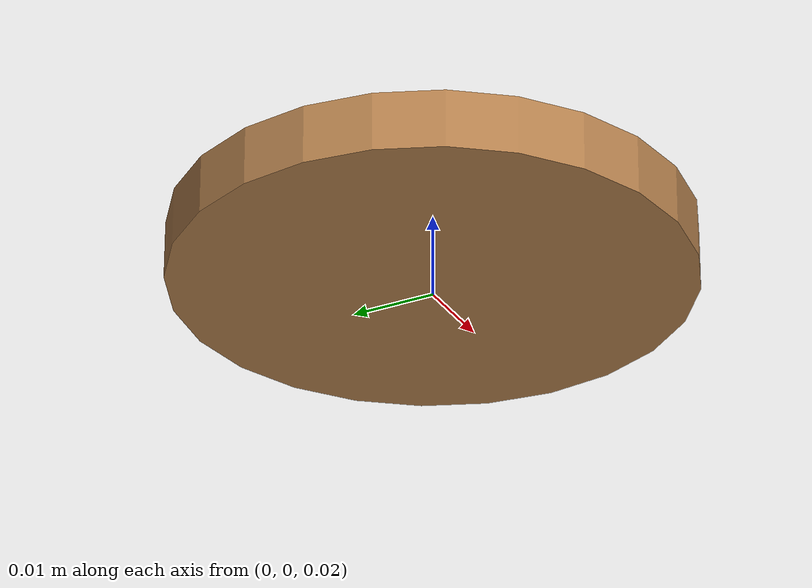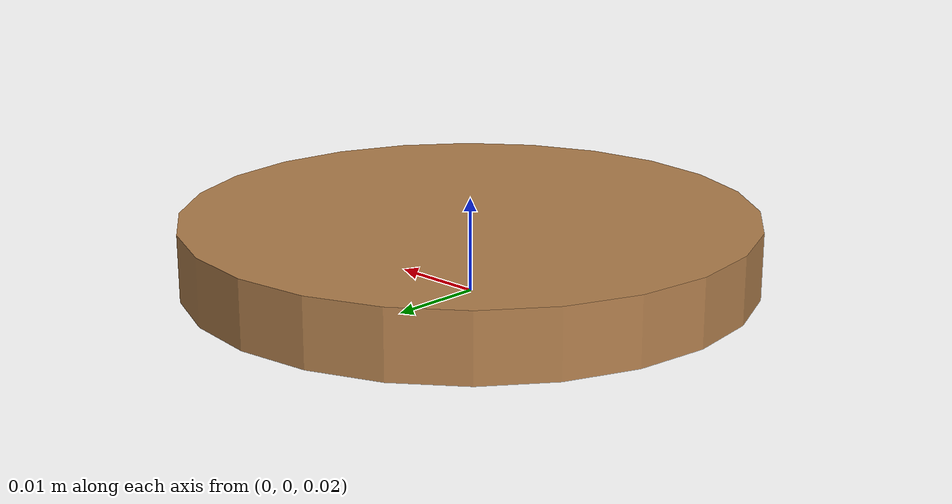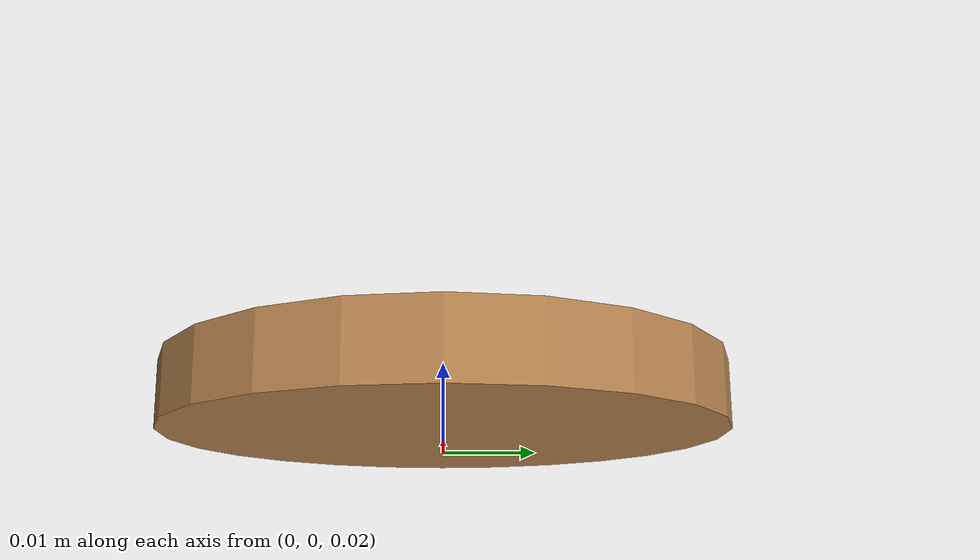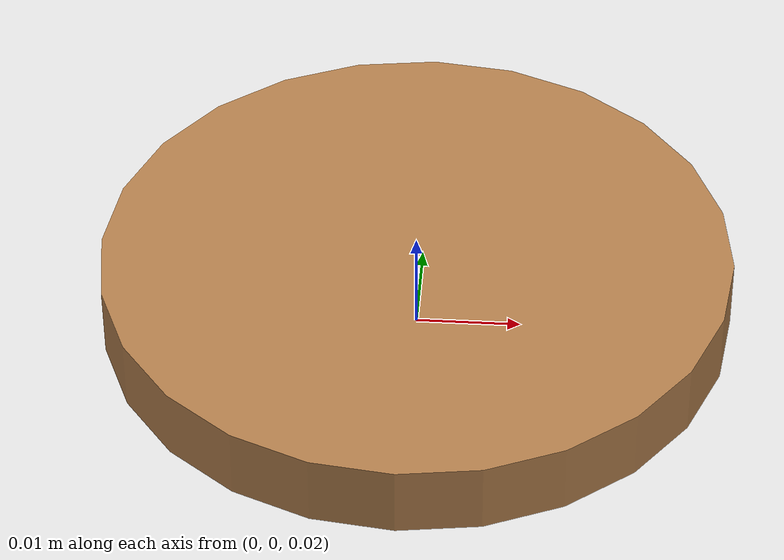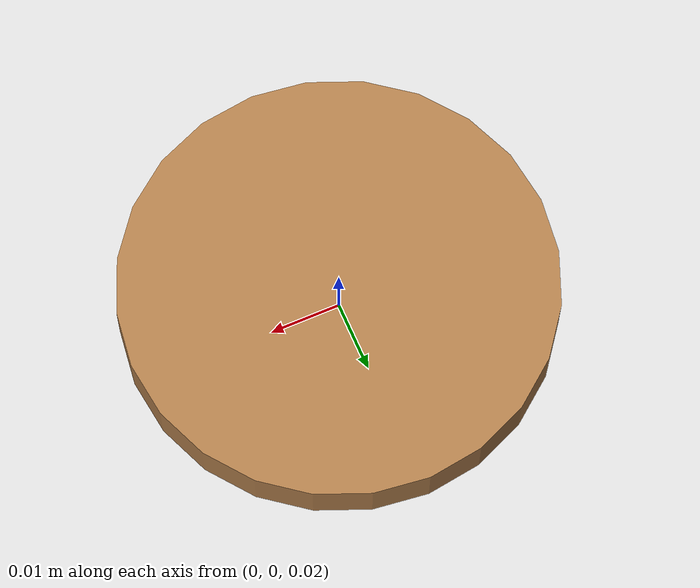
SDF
<?xml version="1.0" ?>
<sdf version="1.5">
  <model name="wood_pedestal">
    <link name="link">
      <pose>0 0 0.025 0 0 0</pose>
      <inertial>
        <mass>0.0565</mass>
        <inertia>
          <ixx>2.3541666666666672e-05</ixx>
          <ixy>0</ixy>
          <ixz>0</ixz>
          <iyy>2.3541666666666672e-05</iyy>
          <iyz>0</iyz>
          <izz>2.3541666666666672e-05</izz>
        </inertia>
      </inertial>

      <collision name="collision">
        <geometry>
            <cylinder>
                <radius>0.03</radius>
                <length>0.007</length>
            </cylinder>
        </geometry>
        <surface>
          <contact>
            <!-- Red Pine coefficients for longitudinal axis of the wood
                 according to:
                 http://www.fpl.fs.fed.us/documnts/fplgtr/fplgtr113/ch04.pdf -->
            <poissons_ratio>0.347</poissons_ratio>
            <elastic_modulus>8.8e+09</elastic_modulus>
            <ode>
              <kp>100000</kp>
              <kd>1</kd>
              <max_vel>1.0</max_vel>
              <min_depth>0.001</min_depth>
            </ode>
          </contact>
          <friction>
            <torsional>
              <coefficient>1.0</coefficient>
              <use_patch_radius>0</use_patch_radius>
              <surface_radius>0.035</surface_radius>
            </torsional>
          </friction>
        </surface>
      </collision>

      <visual name="visual">
        <geometry>
            <cylinder>
                <radius>0.03</radius>
                <length>0.007</length>
            </cylinder>
        </geometry>
        <material>
          <script>
            <uri>file://media/materials/scripts/gazebo.material</uri>
            <name>Gazebo/Wood</name>
          </script>
        </material>
      </visual>

    </link>
  </model>
</sdf>
